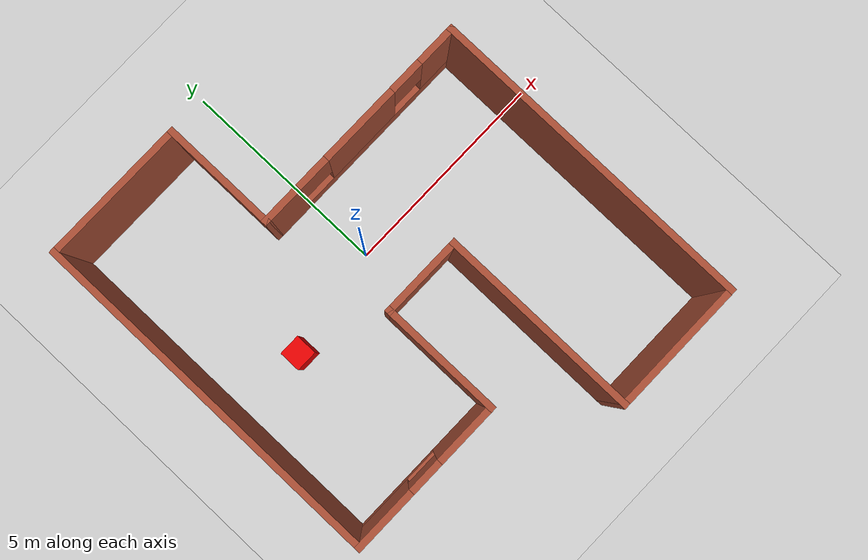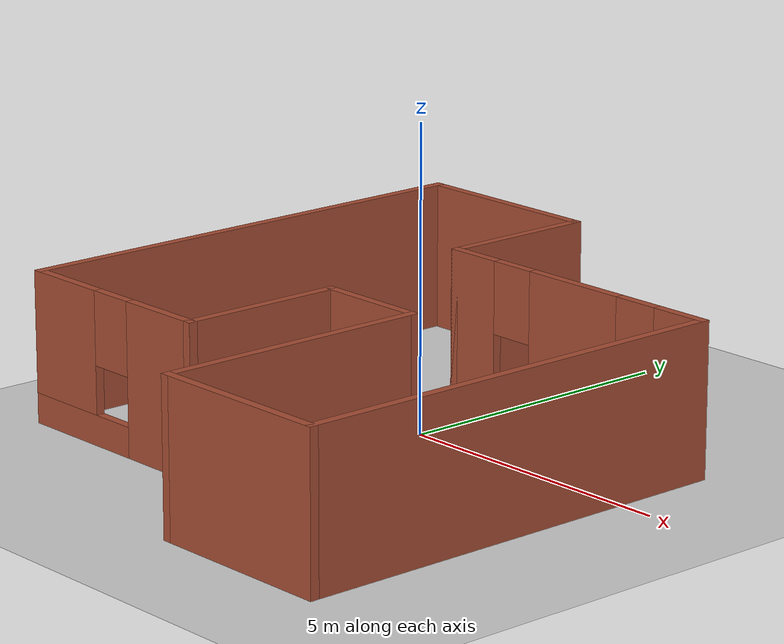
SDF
<sdf version='1.6'>
    <world name='default'>

        <!-- Building -->
        <include>
            <uri>model://h</uri>
            <pose>0 -0.8 0 0 0 0</pose>
            <static>1</static>
        </include>

        <!-- Red box -->
        <include>
            <uri>model://red_box</uri>
            <name>red_box</name>
            <pose>-2.5 -0.5 0.75 0 0 0</pose>
        </include>

        <!-- Light -->
        <light name='sun' type='directional'>
            <cast_shadows>1</cast_shadows>
            <pose frame=''>0 0 10 0 -0 0</pose>
            <diffuse>0.8 0.8 0.8 1</diffuse>
            <specular>0.2 0.2 0.2 1</specular>
            <attenuation>
                <range>1000</range>
                <constant>0.9</constant>
                <linear>0.01</linear>
                <quadratic>0.001</quadratic>
            </attenuation>
            <direction>-0.5 0.1 -0.9</direction>
        </light>

        <!-- Ground -->
        <model name='ground_plane'>
            <static>1</static>
            <link name='link'>
                <collision name='collision'>
                    <geometry>
                        <plane>
                            <normal>0 0 1</normal>
                            <size>100 100</size>
                        </plane>
                    </geometry>
                    <surface>
                        <contact>
                            <collide_bitmask>65535</collide_bitmask>
                            <ode/>
                        </contact>
                        <friction>
                            <ode>
                                <mu>100</mu>
                                <mu2>50</mu2>
                            </ode>
                            <torsional>
                                <ode/>
                            </torsional>
                        </friction>
                        <bounce/>
                    </surface>
                    <max_contacts>10</max_contacts>
                </collision>
                <visual name='visual'>
                    <cast_shadows>0</cast_shadows>
                    <geometry>
                        <plane>
                            <normal>0 0 1</normal>
                            <size>100 100</size>
                        </plane>
                    </geometry>
                    <material>
                        <script>
                            <uri>file://media/materials/scripts/gazebo.material</uri>
                            <name>Gazebo/Grey</name>
                        </script>
                    </material>
                </visual>
                <self_collide>0</self_collide>
                <enable_wind>0</enable_wind>
                <kinematic>0</kinematic>
            </link>
        </model>

        <!-- Physics and other properties -->
        <gravity>0 0 -9.8</gravity>
        <magnetic_field>6e-06 2.3e-05 -4.2e-05</magnetic_field>
        <atmosphere type='adiabatic'/>
        <physics name='default_physics' default='0' type='ode'>
            <max_step_size>0.001</max_step_size>
            <real_time_factor>1</real_time_factor>
            <real_time_update_rate>1000</real_time_update_rate>
        </physics>
        <scene>
            <ambient>0.4 0.4 0.4 1</ambient>
            <background>0.7 0.7 0.7 1</background>
            <shadows>1</shadows>
        </scene>
        <audio>
            <device>default</device>
        </audio>
        <spherical_coordinates>
            <surface_model>EARTH_WGS84</surface_model>
            <latitude_deg>0</latitude_deg>
            <longitude_deg>0</longitude_deg>
            <elevation>0</elevation>
            <heading_deg>0</heading_deg>
        </spherical_coordinates>
        <gui fullscreen='0'>
            <camera name='user_camera'>
                <pose>0 -0.8 19.5 0 1.57 1.57</pose>
                <view_controller>orbit</view_controller>
                <projection_type>perspective</projection_type>
            </camera>
        </gui>
        <wind/>
    </world>
</sdf>

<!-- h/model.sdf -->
<sdf version='1.6'>
  <model name='h'>
    <pose frame=''>-4.99031 1.85832 0 0 -0 0</pose>
    <link name='Wall_0'>
      <collision name='Wall_0_Collision'>
        <geometry>
          <box>
            <size>8.5 0.15 2.5</size>
          </box>
        </geometry>
        <pose frame=''>0 0 1.25 0 -0 0</pose>
      </collision>
      <visual name='Wall_0_Visual'>
        <pose frame=''>0 0 1.25 0 -0 0</pose>
        <geometry>
          <box>
            <size>8.5 0.15 2.5</size>
          </box>
        </geometry>
        <material>
          <script>
            <uri>file://media/materials/scripts/gazebo.material</uri>
            <name>Gazebo/Bricks</name>
          </script>
          <ambient>1 1 1 1</ambient>
        </material>
        <meta>
          <layer>0</layer>
        </meta>
      </visual>
      <pose frame=''>-4.34334 0.925 0 0 -0 1.5708</pose>
    </link>
    <link name='Wall_10'>
      <collision name='Wall_10_Collision'>
        <geometry>
          <box>
            <size>2.9 0.15 2.5</size>
          </box>
        </geometry>
        <pose frame=''>0 0 1.25 0 -0 0</pose>
      </collision>
      <visual name='Wall_10_Visual'>
        <pose frame=''>0 0 1.25 0 -0 0</pose>
        <geometry>
          <box>
            <size>2.9 0.15 2.5</size>
          </box>
        </geometry>
        <material>
          <script>
            <uri>file://media/materials/scripts/gazebo.material</uri>
            <name>Gazebo/Bricks</name>
          </script>
          <ambient>1 1 1 1</ambient>
        </material>
        <meta>
          <layer>0</layer>
        </meta>
      </visual>
      <pose frame=''>-0.606492 -1.875 0 0 -0 -1.5708</pose>
    </link>
    <link name='Wall_11'>
      <pose frame=''>-2.47492 -3.25 0 0 -0 -3.14159</pose>
      <visual name='Wall_11_Visual_0'>
        <pose frame=''>-1.17274 0 1.25 0 -0 0</pose>
        <geometry>
          <box>
            <size>1.54171 0.15 2.5</size>
          </box>
        </geometry>
        <material>
          <script>
            <uri>file://media/materials/scripts/gazebo.material</uri>
            <name>Gazebo/Bricks</name>
          </script>
          <ambient>1 1 1 1</ambient>
        </material>
        <meta>
          <layer>0</layer>
        </meta>
      </visual>
      <collision name='Wall_11_Collision_0'>
        <geometry>
          <box>
            <size>1.54171 0.15 2.5</size>
          </box>
        </geometry>
        <pose frame=''>-1.17274 0 1.25 0 -0 0</pose>
      </collision>
      <visual name='Wall_11_Visual_1'>
        <pose frame=''>0.770855 0 0.25 0 -0 0</pose>
        <geometry>
          <box>
            <size>2.34547 0.15 0.5</size>
          </box>
        </geometry>
        <material>
          <script>
            <uri>file://media/materials/scripts/gazebo.material</uri>
            <name>Gazebo/Bricks</name>
          </script>
          <ambient>1 1 1 1</ambient>
        </material>
        <meta>
          <layer>0</layer>
        </meta>
      </visual>
      <collision name='Wall_11_Collision_1'>
        <geometry>
          <box>
            <size>2.34547 0.15 0.5</size>
          </box>
        </geometry>
        <pose frame=''>0.770855 0 0.25 0 -0 0</pose>
      </collision>
      <visual name='Wall_11_Visual_2'>
        <pose frame=''>1.17085 0 1.5 0 -0 0</pose>
        <geometry>
          <box>
            <size>1.54547 0.15 2</size>
          </box>
        </geometry>
        <material>
          <script>
            <uri>file://media/materials/scripts/gazebo.material</uri>
            <name>Gazebo/Bricks</name>
          </script>
          <ambient>1 1 1 1</ambient>
        </material>
        <meta>
          <layer>0</layer>
        </meta>
      </visual>
      <collision name='Wall_11_Collision_2'>
        <geometry>
          <box>
            <size>1.54547 0.15 2</size>
          </box>
        </geometry>
        <pose frame=''>1.17085 0 1.5 0 -0 0</pose>
      </collision>
      <visual name='Wall_11_Visual_3'>
        <pose frame=''>-0.001883 0 1.9 0 -0 0</pose>
        <geometry>
          <box>
            <size>0.8 0.15 1.2</size>
          </box>
        </geometry>
        <material>
          <script>
            <uri>file://media/materials/scripts/gazebo.material</uri>
            <name>Gazebo/Bricks</name>
          </script>
          <ambient>1 1 1 1</ambient>
        </material>
        <meta>
          <layer>0</layer>
        </meta>
      </visual>
      <collision name='Wall_11_Collision_3'>
        <geometry>
          <box>
            <size>0.8 0.15 1.2</size>
          </box>
        </geometry>
        <pose frame=''>-0.001883 0 1.9 0 -0 0</pose>
      </collision>
    </link>
    <link name='Wall_3'>
      <collision name='Wall_3_Collision'>
        <geometry>
          <box>
            <size>3.4737 0.15 2.5</size>
          </box>
        </geometry>
        <pose frame=''>0 0 1.25 0 -0 0</pose>
      </collision>
      <visual name='Wall_3_Visual'>
        <pose frame=''>0 0 1.25 0 -0 0</pose>
        <geometry>
          <box>
            <size>3.4737 0.15 2.5</size>
          </box>
        </geometry>
        <material>
          <script>
            <uri>file://media/materials/scripts/gazebo.material</uri>
            <name>Gazebo/Bricks</name>
          </script>
          <ambient>1 1 1 1</ambient>
        </material>
        <meta>
          <layer>0</layer>
        </meta>
      </visual>
      <pose frame=''>-2.66834 5.1 0 0 -0 0</pose>
    </link>
    <link name='Wall_4'>
      <collision name='Wall_4_Collision'>
        <geometry>
          <box>
            <size>2.75 0.15 2.5</size>
          </box>
        </geometry>
        <pose frame=''>0 0 1.25 0 -0 0</pose>
      </collision>
      <visual name='Wall_4_Visual'>
        <pose frame=''>0 0 1.25 0 -0 0</pose>
        <geometry>
          <box>
            <size>2.75 0.15 2.5</size>
          </box>
        </geometry>
        <material>
          <script>
            <uri>file://media/materials/scripts/gazebo.material</uri>
            <name>Gazebo/Bricks</name>
          </script>
          <ambient>1 1 1 1</ambient>
        </material>
        <meta>
          <layer>0</layer>
        </meta>
      </visual>
      <pose frame=''>-1.00649 3.8 0 0 -0 -1.5708</pose>
    </link>
    <link name='Wall_5'>
      <pose frame=''>1.66851 2.5 0 0 -0 0</pose>
      <visual name='Wall_5_Visual_0'>
        <pose frame=''>-2.24984 0 1.25 0 -0 0</pose>
        <geometry>
          <box>
            <size>1.00033 0.15 2.5</size>
          </box>
        </geometry>
        <material>
          <script>
            <uri>file://media/materials/scripts/gazebo.material</uri>
            <name>Gazebo/Bricks</name>
          </script>
          <ambient>1 1 1 1</ambient>
        </material>
        <meta>
          <layer>0</layer>
        </meta>
      </visual>
      <collision name='Wall_5_Collision_0'>
        <geometry>
          <box>
            <size>1.00033 0.15 2.5</size>
          </box>
        </geometry>
        <pose frame=''>-2.24984 0 1.25 0 -0 0</pose>
      </collision>
      <visual name='Wall_5_Visual_1'>
        <pose frame=''>0.500163 0 0.25 0 -0 0</pose>
        <geometry>
          <box>
            <size>4.49967 0.15 0.5</size>
          </box>
        </geometry>
        <material>
          <script>
            <uri>file://media/materials/scripts/gazebo.material</uri>
            <name>Gazebo/Bricks</name>
          </script>
          <ambient>1 1 1 1</ambient>
        </material>
        <meta>
          <layer>0</layer>
        </meta>
      </visual>
      <collision name='Wall_5_Collision_1'>
        <geometry>
          <box>
            <size>4.49967 0.15 0.5</size>
          </box>
        </geometry>
        <pose frame=''>0.500163 0 0.25 0 -0 0</pose>
      </collision>
      <visual name='Wall_5_Visual_2'>
        <pose frame=''>0.000169 0 1.5 0 -0 0</pose>
        <geometry>
          <box>
            <size>1.89969 0.15 2</size>
          </box>
        </geometry>
        <material>
          <script>
            <uri>file://media/materials/scripts/gazebo.material</uri>
            <name>Gazebo/Bricks</name>
          </script>
          <ambient>1 1 1 1</ambient>
        </material>
        <meta>
          <layer>0</layer>
        </meta>
      </visual>
      <collision name='Wall_5_Collision_2'>
        <geometry>
          <box>
            <size>1.89969 0.15 2</size>
          </box>
        </geometry>
        <pose frame=''>0.000169 0 1.5 0 -0 0</pose>
      </collision>
      <visual name='Wall_5_Visual_3'>
        <pose frame=''>2.25001 0 1.5 0 -0 0</pose>
        <geometry>
          <box>
            <size>0.999987 0.15 2</size>
          </box>
        </geometry>
        <material>
          <script>
            <uri>file://media/materials/scripts/gazebo.material</uri>
            <name>Gazebo/Bricks</name>
          </script>
          <ambient>1 1 1 1</ambient>
        </material>
        <meta>
          <layer>0</layer>
        </meta>
      </visual>
      <collision name='Wall_5_Collision_3'>
        <geometry>
          <box>
            <size>0.999987 0.15 2</size>
          </box>
        </geometry>
        <pose frame=''>2.25001 0 1.5 0 -0 0</pose>
      </collision>
      <visual name='Wall_5_Visual_4'>
        <pose frame=''>-1.34967 0 1.9 0 -0 0</pose>
        <geometry>
          <box>
            <size>0.8 0.15 1.2</size>
          </box>
        </geometry>
        <material>
          <script>
            <uri>file://media/materials/scripts/gazebo.material</uri>
            <name>Gazebo/Bricks</name>
          </script>
          <ambient>1 1 1 1</ambient>
        </material>
        <meta>
          <layer>0</layer>
        </meta>
      </visual>
      <collision name='Wall_5_Collision_4'>
        <geometry>
          <box>
            <size>0.8 0.15 1.2</size>
          </box>
        </geometry>
        <pose frame=''>-1.34967 0 1.9 0 -0 0</pose>
      </collision>
      <visual name='Wall_5_Visual_5'>
        <pose frame=''>1.35001 0 1.9 0 -0 0</pose>
        <geometry>
          <box>
            <size>0.8 0.15 1.2</size>
          </box>
        </geometry>
        <material>
          <script>
            <uri>file://media/materials/scripts/gazebo.material</uri>
            <name>Gazebo/Bricks</name>
          </script>
          <ambient>1 1 1 1</ambient>
        </material>
        <meta>
          <layer>0</layer>
        </meta>
      </visual>
      <collision name='Wall_5_Collision_5'>
        <geometry>
          <box>
            <size>0.8 0.15 1.2</size>
          </box>
        </geometry>
        <pose frame=''>1.35001 0 1.9 0 -0 0</pose>
      </collision>
    </link>
    <link name='Wall_6'>
      <collision name='Wall_6_Collision'>
        <geometry>
          <box>
            <size>7.75 0.15 2.5</size>
          </box>
        </geometry>
        <pose frame=''>0 0 1.25 0 -0 0</pose>
      </collision>
      <visual name='Wall_6_Visual'>
        <pose frame=''>0 0 1.25 0 -0 0</pose>
        <geometry>
          <box>
            <size>7.75 0.15 2.5</size>
          </box>
        </geometry>
        <material>
          <script>
            <uri>file://media/materials/scripts/gazebo.material</uri>
            <name>Gazebo/Bricks</name>
          </script>
          <ambient>1 1 1 1</ambient>
        </material>
        <meta>
          <layer>0</layer>
        </meta>
      </visual>
      <pose frame=''>4.34351 -1.3 0 0 -0 -1.5708</pose>
    </link>
    <link name='Wall_7'>
      <collision name='Wall_7_Collision'>
        <geometry>
          <box>
            <size>3.25 0.15 2.5</size>
          </box>
        </geometry>
        <pose frame=''>0 0 1.25 0 -0 0</pose>
      </collision>
      <visual name='Wall_7_Visual'>
        <pose frame=''>0 0 1.25 0 -0 0</pose>
        <geometry>
          <box>
            <size>3.25 0.15 2.5</size>
          </box>
        </geometry>
        <material>
          <script>
            <uri>file://media/materials/scripts/gazebo.material</uri>
            <name>Gazebo/Bricks</name>
          </script>
          <ambient>1 1 1 1</ambient>
        </material>
        <meta>
          <layer>0</layer>
        </meta>
      </visual>
      <pose frame=''>2.79351 -5.1 0 0 -0 3.14159</pose>
    </link>
    <link name='Wall_8'>
      <collision name='Wall_8_Collision'>
        <geometry>
          <box>
            <size>4.75 0.15 2.5</size>
          </box>
        </geometry>
        <pose frame=''>0 0 1.25 0 -0 0</pose>
      </collision>
      <visual name='Wall_8_Visual'>
        <pose frame=''>0 0 1.25 0 -0 0</pose>
        <geometry>
          <box>
            <size>4.75 0.15 2.5</size>
          </box>
        </geometry>
        <material>
          <script>
            <uri>file://media/materials/scripts/gazebo.material</uri>
            <name>Gazebo/Bricks</name>
          </script>
          <ambient>1 1 1 1</ambient>
        </material>
        <meta>
          <layer>0</layer>
        </meta>
      </visual>
      <pose frame=''>1.24351 -2.8 0 0 -0 1.5708</pose>
    </link>
    <link name='Wall_9'>
      <collision name='Wall_9_Collision'>
        <geometry>
          <box>
            <size>2 0.15 2.5</size>
          </box>
        </geometry>
        <pose frame=''>0 0 1.25 0 -0 0</pose>
      </collision>
      <visual name='Wall_9_Visual'>
        <pose frame=''>0 0 1.25 0 -0 0</pose>
        <geometry>
          <box>
            <size>2 0.15 2.5</size>
          </box>
        </geometry>
        <material>
          <script>
            <uri>file://media/materials/scripts/gazebo.material</uri>
            <name>Gazebo/Bricks</name>
          </script>
          <ambient>1 1 1 1</ambient>
        </material>
        <meta>
          <layer>0</layer>
        </meta>
      </visual>
      <pose frame=''>0.318508 -0.5 0 0 -0 3.14159</pose>
    </link>
    <static>1</static>
  </model>
</sdf>

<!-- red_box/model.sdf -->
<sdf version='1.6'>
  <model name='red_box'>
    <link name='link'>
      <inertial>
        <mass>1</mass>
        <inertia>
          <ixx>0.166667</ixx>
          <ixy>0</ixy>
          <ixz>0</ixz>
          <iyy>0.166667</iyy>
          <iyz>0</iyz>
          <izz>0.166667</izz>
        </inertia>
        <pose frame=''>0 0 0 0 0 0</pose>
      </inertial>
      <self_collide>0</self_collide>
      <enable_wind>0</enable_wind>
      <kinematic>0</kinematic>
      <pose frame=''>0 0 0 0 0 0</pose>
      <gravity>1</gravity>
      <visual name='visual'>
        <geometry>
          <box>
            <size>0.5 0.5 1.5</size>
          </box>
        </geometry>
        <material>
          <script>
            <name>Gazebo/Grey</name>
            <uri>file://media/materials/scripts/gazebo.material</uri>
          </script>
          <ambient>0.9 0 0 1</ambient>
          <shader type='vertex'>
            <normal_map>__default__</normal_map>
          </shader>
          <diffuse>0.9 0 0 1</diffuse>
          <specular>0.9 0 0 1</specular>
          <emissive>0 0 0 1</emissive>
        </material>
        <pose frame=''>0 0 0 0 0 0</pose>
        <transparency>0</transparency>
        <cast_shadows>1</cast_shadows>
      </visual>
      <collision name='collision'>
        <laser_retro>0</laser_retro>
        <max_contacts>10</max_contacts>
        <pose frame=''>0 0 0 0 0 0</pose>
        <geometry>
          <box>
            <size>0.5 0.5 0.5</size>
          </box>
        </geometry>
        <surface>
          <friction>
            <ode>
              <mu>1</mu>
              <mu2>1</mu2>
              <fdir1>0 0 0</fdir1>
              <slip1>0</slip1>
              <slip2>0</slip2>
            </ode>
            <torsional>
              <coefficient>1</coefficient>
              <patch_radius>0</patch_radius>
              <surface_radius>0</surface_radius>
              <use_patch_radius>1</use_patch_radius>
              <ode>
                <slip>0</slip>
              </ode>
            </torsional>
          </friction>
          <bounce>
            <restitution_coefficient>0</restitution_coefficient>
            <threshold>1e+06</threshold>
          </bounce>
          <contact>
            <collide_without_contact>0</collide_without_contact>
            <collide_without_contact_bitmask>1</collide_without_contact_bitmask>
            <collide_bitmask>1</collide_bitmask>
            <ode>
              <soft_cfm>0</soft_cfm>
              <soft_erp>0.2</soft_erp>
              <kp>1e+13</kp>
              <kd>1</kd>
              <max_vel>0.01</max_vel>
              <min_depth>0</min_depth>
            </ode>
            <bullet>
              <split_impulse>1</split_impulse>
              <split_impulse_penetration_threshold>-0.01</split_impulse_penetration_threshold>
              <soft_cfm>0</soft_cfm>
              <soft_erp>0.2</soft_erp>
              <kp>1e+13</kp>
              <kd>1</kd>
            </bullet>
          </contact>
        </surface>
      </collision>
    </link>
    <static>0</static>
    <allow_auto_disable>1</allow_auto_disable>
  </model>
</sdf>
